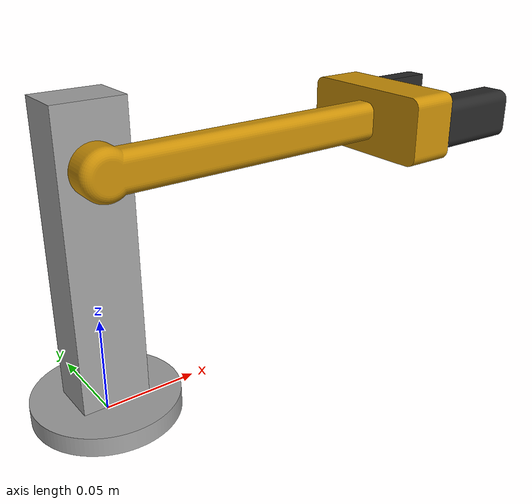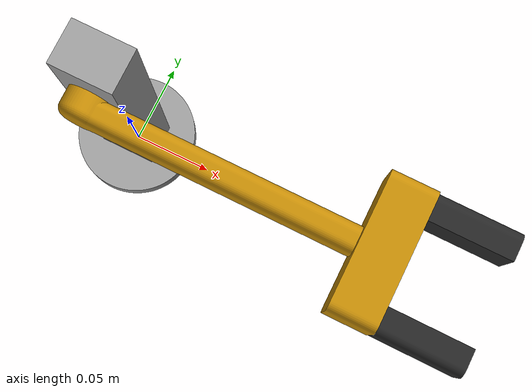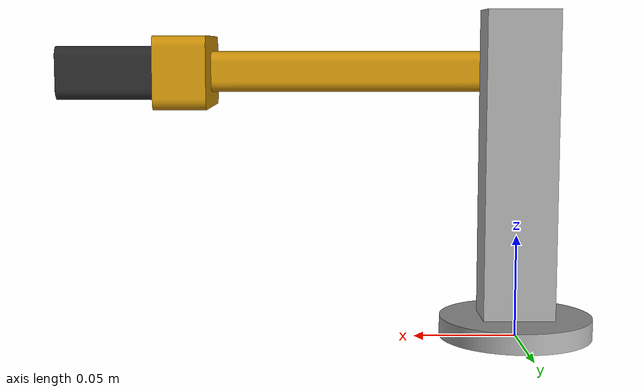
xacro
<?xml version="1.0" ?>
<robot name="2_dof" xmlns:xacro="http://www.ros.org/wiki/xacro">

<xacro:include filename="$(find 2_dof_description)/urdf/materials.xacro" />
<xacro:include filename="$(find 2_dof_description)/urdf/2_dof.trans" />
<xacro:include filename="$(find 2_dof_description)/urdf/2_dof.gazebo" />
<link name="base_link">
  <inertial>
    <origin rpy="0 0 0" xyz="3.860015400081353e-17 3.860015400081353e-17 0.004999999999999999"/>
    <mass value="0.34680237652518564"/>
    <inertia ixx="0.000125" ixy="0.0" ixz="0.0" iyy="0.000125" iyz="0.0" izz="0.000244"/>
  </inertial>
  <visual>
    <origin rpy="0 0 0" xyz="0 0 0"/>
    <geometry>
      <mesh filename="package://2_dof_description/meshes/base_link.stl" scale="0.001 0.001 0.001"/>
    </geometry>
    <material name="steel_satin"/>
  </visual>
  <collision>
    <origin rpy="0 0 0" xyz="0 0 0"/>
    <geometry>
      <mesh filename="package://2_dof_description/meshes/base_link.stl" scale="0.001 0.001 0.001"/>
    </geometry>
  </collision>
</link>

<link name="arm_link_v1_1">
  <inertial>
    <origin rpy="0 0 0" xyz="0.0 -1.7763568394002505e-17 0.07500000000000001"/>
    <mass value="1.0303125000000002"/>
    <inertia ixx="0.001985" ixy="0.0" ixz="0.0" iyy="0.002037" iyz="0.0" izz="0.000159"/>
  </inertial>
  <visual>
    <origin rpy="0 0 0" xyz="-0.0 -0.0 -0.01"/>
    <geometry>
      <mesh filename="package://2_dof_description/meshes/arm_link_v1_1.stl" scale="0.001 0.001 0.001"/>
    </geometry>
    <material name="steel_satin"/>
  </visual>
  <collision>
    <origin rpy="0 0 0" xyz="-0.0 -0.0 -0.01"/>
    <geometry>
      <mesh filename="package://2_dof_description/meshes/arm_link_v1_1.stl" scale="0.001 0.001 0.001"/>
    </geometry>
  </collision>
</link>

<link name="fist_link_v8_1">
  <inertial>
    <origin rpy="0 0 0" xyz="0.12729700646569675 -0.04498485226422049 0.17500001099890117"/>
    <mass value="0.9624376752454894"/>
    <inertia ixx="0.000357" ixy="2e-06" ixz="0.0" iyy="0.002901" iyz="0.0" izz="0.003114"/>
  </inertial>
  <visual>
    <origin rpy="0 0 0" xyz="-0.0 -0.025 0.045"/>
    <geometry>
      <mesh filename="package://2_dof_description/meshes/fist_link_v8_1.stl" scale="0.001 0.001 0.001"/>
    </geometry>
    <material name="polymide_kapton"/>
  </visual>
  <collision>
    <origin rpy="0 0 0" xyz="-0.0 -0.025 0.045"/>
    <geometry>
      <mesh filename="package://2_dof_description/meshes/fist_link_v8_1.stl" scale="0.001 0.001 0.001"/>
    </geometry>
  </collision>
</link>

<link name="left_claw_v2_1">
  <inertial>
    <origin rpy="0 0 0" xyz="0.02250000000000002 -0.09481197487163823 0.13"/>
    <mass value="0.01524469565690916"/>
    <inertia ixx="1e-06" ixy="0.0" ixz="0.0" iyy="3e-06" iyz="0.0" izz="3e-06"/>
  </inertial>
  <visual>
    <origin rpy="0 0 0" xyz="-0.175 -0.045 -0.0"/>
    <geometry>
      <mesh filename="package://2_dof_description/meshes/left_claw_v2_1.stl" scale="0.001 0.001 0.001"/>
    </geometry>
    <material name="rubber_soft"/>
  </visual>
  <collision>
    <origin rpy="0 0 0" xyz="-0.175 -0.045 -0.0"/>
    <geometry>
      <mesh filename="package://2_dof_description/meshes/left_claw_v2_1.stl" scale="0.001 0.001 0.001"/>
    </geometry>
  </collision>
</link>

<link name="right_claw_v2_1">
  <inertial>
    <origin rpy="0 0 0" xyz="0.02250000000000002 0.03981197487163816 0.13"/>
    <mass value="0.01524469565690916"/>
    <inertia ixx="1e-06" ixy="0.0" ixz="0.0" iyy="3e-06" iyz="0.0" izz="3e-06"/>
  </inertial>
  <visual>
    <origin rpy="0 0 0" xyz="-0.175 0.03 -0.0"/>
    <geometry>
      <mesh filename="package://2_dof_description/meshes/right_claw_v2_1.stl" scale="0.001 0.001 0.001"/>
    </geometry>
    <material name="rubber_soft"/>
  </visual>
  <collision>
    <origin rpy="0 0 0" xyz="-0.175 0.03 -0.0"/>
    <geometry>
      <mesh filename="package://2_dof_description/meshes/right_claw_v2_1.stl" scale="0.001 0.001 0.001"/>
    </geometry>
  </collision>
</link>

<joint name="Rev1" type="continuous">
  <origin rpy="0 0 0" xyz="0.0 0.0 0.01"/>
  <parent link="base_link"/>
  <child link="arm_link_v1_1"/>
  <axis xyz="0.0 -0.0 1.0"/>
</joint>

<joint name="Rev2" type="continuous">
  <origin rpy="0 0 0" xyz="0.0 0.025 -0.055"/>
  <parent link="arm_link_v1_1"/>
  <child link="fist_link_v8_1"/>
  <axis xyz="0.0 -1.0 -0.0"/>
</joint>

<joint name="Slider5" type="prismatic">
  <origin rpy="0 0 0" xyz="0.175 0.02 0.045"/>
  <parent link="fist_link_v8_1"/>
  <child link="left_claw_v2_1"/>
  <axis xyz="-0.0 -1.0 -0.0"/>
  <limit effort="100" lower="0.0" upper="0.0" velocity="100"/>
</joint>

<joint name="Slider6" type="prismatic">
  <origin rpy="0 0 0" xyz="0.175 -0.055 0.045"/>
  <parent link="fist_link_v8_1"/>
  <child link="right_claw_v2_1"/>
  <axis xyz="0.0 1.0 0.0"/>
  <limit effort="100" lower="0.0" upper="0.0" velocity="100"/>
</joint>

</robot>

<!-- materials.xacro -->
<robot name="2_dof" xmlns:xacro="http://www.ros.org/wiki/xacro" >

<material name="silver_default">
  <color rgba="0.700 0.700 0.700 1.000"/>
</material>
<material name="steel_satin">
  <color rgba="0.6274509803921569 0.6274509803921569 0.6274509803921569 1.0"/>
</material>
<material name="polymide_kapton">
  <color rgba="0.7843137254901961 0.5568627450980392 0.027450980392156862 1.0"/>
</material>
<material name="rubber_soft">
  <color rgba="0.15294117647058825 0.15294117647058825 0.15294117647058825 1.0"/>
</material>

</robot>

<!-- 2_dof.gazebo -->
<robot name="2_dof" xmlns:xacro="http://www.ros.org/wiki/xacro" >

<xacro:property name="body_color" value="Gazebo/Silver" />

<gazebo>
  <plugin filename="libgazebo_ros_control.so" name="control"/>
</gazebo>
<gazebo reference="base_link">
  <material>${body_color}</material>
  <mu1>0.2</mu1>
  <mu2>0.2</mu2>
  <selfCollide>true</selfCollide>
  <gravity>true</gravity>
</gazebo>

<gazebo reference="arm_link_v1_1">
  <material>${body_color}</material>
  <mu1>0.2</mu1>
  <mu2>0.2</mu2>
  <selfCollide>true</selfCollide>
</gazebo>

<gazebo reference="fist_link_v8_1">
  <material>${body_color}</material>
  <mu1>0.2</mu1>
  <mu2>0.2</mu2>
  <selfCollide>true</selfCollide>
</gazebo>

<gazebo reference="left_claw_v2_1">
  <material>${body_color}</material>
  <mu1>0.2</mu1>
  <mu2>0.2</mu2>
  <selfCollide>true</selfCollide>
</gazebo>

<gazebo reference="right_claw_v2_1">
  <material>${body_color}</material>
  <mu1>0.2</mu1>
  <mu2>0.2</mu2>
  <selfCollide>true</selfCollide>
</gazebo>

</robot>
